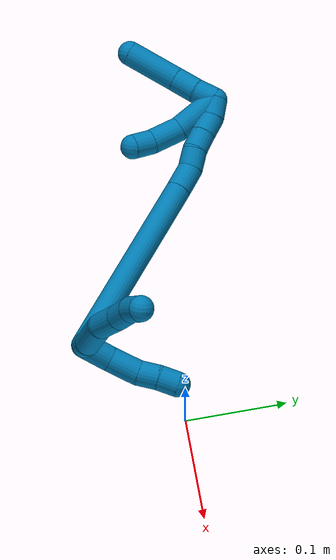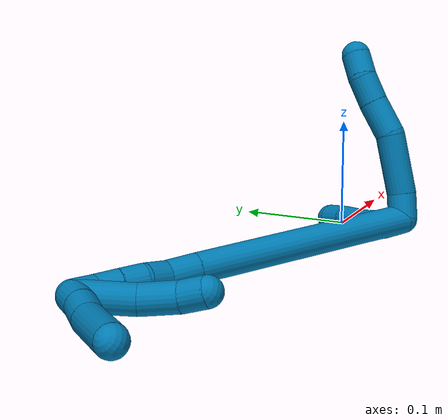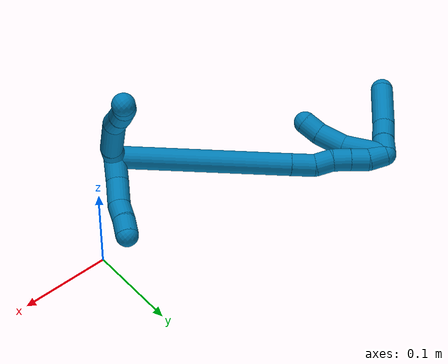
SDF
<sdf version="1.7">
 <world name="default">
  <model name="9">
   <static>0</static>
   <link name="9">
    <collision name="collision-cylinder-e_1_2_8">
     <pose>0.009664 -0.002341 0.00438 0.490951 1.0961 0.303506</pose>
     <geometry><cylinder><radius>0.0125</radius><length>0.021731</length></cylinder></geometry>
     <surface>
      <friction><ode><mu>1.16</mu><mu2>1.16</mu2><slip1>0</slip1><slip2>0</slip2></ode></friction>
      <contact><ode><kp>1e+06</kp><kd>1</kd><max_vel>0</max_vel><min_depth>0.001</min_depth></ode></contact>
     </surface>
    </collision>
    <visual name="visual-cylinder-e_1_2_8">
     <pose>0.009664 -0.002341 0.00438 0.490951 1.0961 0.303506</pose>
     <geometry><cylinder><radius>0.0125</radius><length>0.021731</length></cylinder></geometry>
     <material><ambient>0 0.490196 0.709804 1</ambient></material>
    </visual>
    <collision name="collision-cylinder-e_2_8_9">
     <pose>0.039973 -0.008161 0.024059 0.223553 0.920922 0.111237</pose>
     <geometry><cylinder><radius>0.0125</radius><length>0.05186</length></cylinder></geometry>
     <surface>
      <friction><ode><mu>1.16</mu><mu2>1.16</mu2><slip1>0</slip1><slip2>0</slip2></ode></friction>
      <contact><ode><kp>1e+06</kp><kd>1</kd><max_vel>0</max_vel><min_depth>0.001</min_depth></ode></contact>
     </surface>
    </collision>
    <visual name="visual-cylinder-e_2_8_9">
     <pose>0.039973 -0.008161 0.024059 0.223553 0.920922 0.111237</pose>
     <geometry><cylinder><radius>0.0125</radius><length>0.05186</length></cylinder></geometry>
     <material><ambient>0 0.490196 0.709804 1</ambient></material>
    </visual>
    <collision name="collision-cylinder-e_3_9_10">
     <pose>0.073523 -0.008592 0.047621 -0.353371 0.971987 -0.18808</pose>
     <geometry><cylinder><radius>0.0125</radius><length>0.031249</length></cylinder></geometry>
     <surface>
      <friction><ode><mu>1.16</mu><mu2>1.16</mu2><slip1>0</slip1><slip2>0</slip2></ode></friction>
      <contact><ode><kp>1e+06</kp><kd>1</kd><max_vel>0</max_vel><min_depth>0.001</min_depth></ode></contact>
     </surface>
    </collision>
    <visual name="visual-cylinder-e_3_9_10">
     <pose>0.073523 -0.008592 0.047621 -0.353371 0.971987 -0.18808</pose>
     <geometry><cylinder><radius>0.0125</radius><length>0.031249</length></cylinder></geometry>
     <material><ambient>0 0.490196 0.709804 1</ambient></material>
    </visual>
    <collision name="collision-cylinder-e_4_10_11">
     <pose>0.0964 -0.004248 0.062695 -0.187991 0.963245 -0.098469</pose>
     <geometry><cylinder><radius>0.0125</radius><length>0.02429</length></cylinder></geometry>
     <surface>
      <friction><ode><mu>1.16</mu><mu2>1.16</mu2><slip1>0</slip1><slip2>0</slip2></ode></friction>
      <contact><ode><kp>1e+06</kp><kd>1</kd><max_vel>0</max_vel><min_depth>0.001</min_depth></ode></contact>
     </surface>
    </collision>
    <visual name="visual-cylinder-e_4_10_11">
     <pose>0.0964 -0.004248 0.062695 -0.187991 0.963245 -0.098469</pose>
     <geometry><cylinder><radius>0.0125</radius><length>0.02429</length></cylinder></geometry>
     <material><ambient>0 0.490196 0.709804 1</ambient></material>
    </visual>
    <collision name="collision-cylinder-e_5_11_6">
     <pose>0.116165 -0.002267 0.073043 -0.191557 1.21822 -0.133838</pose>
     <geometry><cylinder><radius>0.0125</radius><length>0.02087</length></cylinder></geometry>
     <surface>
      <friction><ode><mu>1.16</mu><mu2>1.16</mu2><slip1>0</slip1><slip2>0</slip2></ode></friction>
      <contact><ode><kp>1e+06</kp><kd>1</kd><max_vel>0</max_vel><min_depth>0.001</min_depth></ode></contact>
     </surface>
    </collision>
    <visual name="visual-cylinder-e_5_11_6">
     <pose>0.116165 -0.002267 0.073043 -0.191557 1.21822 -0.133838</pose>
     <geometry><cylinder><radius>0.0125</radius><length>0.02087</length></cylinder></geometry>
     <material><ambient>0 0.490196 0.709804 1</ambient></material>
    </visual>
    <collision name="collision-cylinder-e_1_2_12">
     <pose>0.003735 0.012431 -0.00634 -2.04244 0.261505 -0.422958</pose>
     <geometry><cylinder><radius>0.0125</radius><length>0.028891</length></cylinder></geometry>
     <surface>
      <friction><ode><mu>1.16</mu><mu2>1.16</mu2><slip1>0</slip1><slip2>0</slip2></ode></friction>
      <contact><ode><kp>1e+06</kp><kd>1</kd><max_vel>0</max_vel><min_depth>0.001</min_depth></ode></contact>
     </surface>
    </collision>
    <visual name="visual-cylinder-e_1_2_12">
     <pose>0.003735 0.012431 -0.00634 -2.04244 0.261505 -0.422958</pose>
     <geometry><cylinder><radius>0.0125</radius><length>0.028891</length></cylinder></geometry>
     <material><ambient>0 0.490196 0.709804 1</ambient></material>
    </visual>
    <collision name="collision-cylinder-e_2_12_13">
     <pose>0.014746 0.037356 -0.018035 -1.97571 0.491482 -0.726945</pose>
     <geometry><cylinder><radius>0.0125</radius><length>0.030836</length></cylinder></geometry>
     <surface>
      <friction><ode><mu>1.16</mu><mu2>1.16</mu2><slip1>0</slip1><slip2>0</slip2></ode></friction>
      <contact><ode><kp>1e+06</kp><kd>1</kd><max_vel>0</max_vel><min_depth>0.001</min_depth></ode></contact>
     </surface>
    </collision>
    <visual name="visual-cylinder-e_2_12_13">
     <pose>0.014746 0.037356 -0.018035 -1.97571 0.491482 -0.726945</pose>
     <geometry><cylinder><radius>0.0125</radius><length>0.030836</length></cylinder></geometry>
     <material><ambient>0 0.490196 0.709804 1</ambient></material>
    </visual>
    <collision name="collision-cylinder-e_3_13_14">
     <pose>0.027048 0.058541 -0.024531 -1.70131 0.520618 -0.589512</pose>
     <geometry><cylinder><radius>0.0125</radius><length>0.02021</length></cylinder></geometry>
     <surface>
      <friction><ode><mu>1.16</mu><mu2>1.16</mu2><slip1>0</slip1><slip2>0</slip2></ode></friction>
      <contact><ode><kp>1e+06</kp><kd>1</kd><max_vel>0</max_vel><min_depth>0.001</min_depth></ode></contact>
     </surface>
    </collision>
    <visual name="visual-cylinder-e_3_13_14">
     <pose>0.027048 0.058541 -0.024531 -1.70131 0.520618 -0.589512</pose>
     <geometry><cylinder><radius>0.0125</radius><length>0.02021</length></cylinder></geometry>
     <material><ambient>0 0.490196 0.709804 1</ambient></material>
    </visual>
    <collision name="collision-cylinder-e_4_14_5">
     <pose>0.036629 0.075829 -0.028119 -1.84814 0.47125 -0.615721</pose>
     <geometry><cylinder><radius>0.0125</radius><length>0.020064</length></cylinder></geometry>
     <surface>
      <friction><ode><mu>1.16</mu><mu2>1.16</mu2><slip1>0</slip1><slip2>0</slip2></ode></friction>
      <contact><ode><kp>1e+06</kp><kd>1</kd><max_vel>0</max_vel><min_depth>0.001</min_depth></ode></contact>
     </surface>
    </collision>
    <visual name="visual-cylinder-e_4_14_5">
     <pose>0.036629 0.075829 -0.028119 -1.84814 0.47125 -0.615721</pose>
     <geometry><cylinder><radius>0.0125</radius><length>0.020064</length></cylinder></geometry>
     <material><ambient>0 0.490196 0.709804 1</ambient></material>
    </visual>
    <collision name="collision-cylinder-e_1_2_15">
     <pose>-0.036543 0.059765 0.066414 -0.73275 -0.388249 0.150585</pose>
     <geometry><cylinder><radius>0.0125</radius><length>0.193061</length></cylinder></geometry>
     <surface>
      <friction><ode><mu>1.16</mu><mu2>1.16</mu2><slip1>0</slip1><slip2>0</slip2></ode></friction>
      <contact><ode><kp>1e+06</kp><kd>1</kd><max_vel>0</max_vel><min_depth>0.001</min_depth></ode></contact>
     </surface>
    </collision>
    <visual name="visual-cylinder-e_1_2_15">
     <pose>-0.036543 0.059765 0.066414 -0.73275 -0.388249 0.150585</pose>
     <geometry><cylinder><radius>0.0125</radius><length>0.193061</length></cylinder></geometry>
     <material><ambient>0 0.490196 0.709804 1</ambient></material>
    </visual>
    <collision name="collision-cylinder-e_2_15_16">
     <pose>-0.07842 0.127598 0.141922 -0.725682 -0.413456 0.158908</pose>
     <geometry><cylinder><radius>0.0125</radius><length>0.02655</length></cylinder></geometry>
     <surface>
      <friction><ode><mu>1.16</mu><mu2>1.16</mu2><slip1>0</slip1><slip2>0</slip2></ode></friction>
      <contact><ode><kp>1e+06</kp><kd>1</kd><max_vel>0</max_vel><min_depth>0.001</min_depth></ode></contact>
     </surface>
    </collision>
    <visual name="visual-cylinder-e_2_15_16">
     <pose>-0.07842 0.127598 0.141922 -0.725682 -0.413456 0.158908</pose>
     <geometry><cylinder><radius>0.0125</radius><length>0.02655</length></cylinder></geometry>
     <material><ambient>0 0.490196 0.709804 1</ambient></material>
    </visual>
    <collision name="collision-cylinder-e_3_16_17">
     <pose>-0.087622 0.139046 0.159672 -0.372322 -0.394441 0.075233</pose>
     <geometry><cylinder><radius>0.0125</radius><length>0.020132</length></cylinder></geometry>
     <surface>
      <friction><ode><mu>1.16</mu><mu2>1.16</mu2><slip1>0</slip1><slip2>0</slip2></ode></friction>
      <contact><ode><kp>1e+06</kp><kd>1</kd><max_vel>0</max_vel><min_depth>0.001</min_depth></ode></contact>
     </surface>
    </collision>
    <visual name="visual-cylinder-e_3_16_17">
     <pose>-0.087622 0.139046 0.159672 -0.372322 -0.394441 0.075233</pose>
     <geometry><cylinder><radius>0.0125</radius><length>0.020132</length></cylinder></geometry>
     <material><ambient>0 0.490196 0.709804 1</ambient></material>
    </visual>
    <collision name="collision-cylinder-e_4_17_18">
     <pose>-0.095501 0.148019 0.175697 -0.649269 -0.409017 0.139376</pose>
     <geometry><cylinder><radius>0.0125</radius><length>0.020165</length></cylinder></geometry>
     <surface>
      <friction><ode><mu>1.16</mu><mu2>1.16</mu2><slip1>0</slip1><slip2>0</slip2></ode></friction>
      <contact><ode><kp>1e+06</kp><kd>1</kd><max_vel>0</max_vel><min_depth>0.001</min_depth></ode></contact>
     </surface>
    </collision>
    <visual name="visual-cylinder-e_4_17_18">
     <pose>-0.095501 0.148019 0.175697 -0.649269 -0.409017 0.139376</pose>
     <geometry><cylinder><radius>0.0125</radius><length>0.020165</length></cylinder></geometry>
     <material><ambient>0 0.490196 0.709804 1</ambient></material>
    </visual>
    <collision name="collision-cylinder-e_5_18_19">
     <pose>-0.103441 0.159515 0.190172 -0.693094 -0.402278 0.146997</pose>
     <geometry><cylinder><radius>0.0125</radius><length>0.020078</length></cylinder></geometry>
     <surface>
      <friction><ode><mu>1.16</mu><mu2>1.16</mu2><slip1>0</slip1><slip2>0</slip2></ode></friction>
      <contact><ode><kp>1e+06</kp><kd>1</kd><max_vel>0</max_vel><min_depth>0.001</min_depth></ode></contact>
     </surface>
    </collision>
    <visual name="visual-cylinder-e_5_18_19">
     <pose>-0.103441 0.159515 0.190172 -0.693094 -0.402278 0.146997</pose>
     <geometry><cylinder><radius>0.0125</radius><length>0.020078</length></cylinder></geometry>
     <material><ambient>0 0.490196 0.709804 1</ambient></material>
    </visual>
    <collision name="collision-cylinder-e_6_19_1">
     <pose>-0.111961 0.168571 0.205592 -0.362624 -0.476464 0.08898</pose>
     <geometry><cylinder><radius>0.0125</radius><length>0.020013</length></cylinder></geometry>
     <surface>
      <friction><ode><mu>1.16</mu><mu2>1.16</mu2><slip1>0</slip1><slip2>0</slip2></ode></friction>
      <contact><ode><kp>1e+06</kp><kd>1</kd><max_vel>0</max_vel><min_depth>0.001</min_depth></ode></contact>
     </surface>
    </collision>
    <visual name="visual-cylinder-e_6_19_1">
     <pose>-0.111961 0.168571 0.205592 -0.362624 -0.476464 0.08898</pose>
     <geometry><cylinder><radius>0.0125</radius><length>0.020013</length></cylinder></geometry>
     <material><ambient>0 0.490196 0.709804 1</ambient></material>
    </visual>
    <collision name="collision-cylinder-e_1_1_20">
     <pose>-0.11667 0.153295 0.199053 2.24911 -0.005042 -0.010539</pose>
     <geometry><cylinder><radius>0.0125</radius><length>0.047342</length></cylinder></geometry>
     <surface>
      <friction><ode><mu>1.16</mu><mu2>1.16</mu2><slip1>0</slip1><slip2>0</slip2></ode></friction>
      <contact><ode><kp>1e+06</kp><kd>1</kd><max_vel>0</max_vel><min_depth>0.001</min_depth></ode></contact>
     </surface>
    </collision>
    <visual name="visual-cylinder-e_1_1_20">
     <pose>-0.11667 0.153295 0.199053 2.24911 -0.005042 -0.010539</pose>
     <geometry><cylinder><radius>0.0125</radius><length>0.047342</length></cylinder></geometry>
     <material><ambient>0 0.490196 0.709804 1</ambient></material>
    </visual>
    <collision name="collision-cylinder-e_2_20_21">
     <pose>-0.116749 0.120351 0.177703 1.99176 0.002525 0.003897</pose>
     <geometry><cylinder><radius>0.0125</radius><length>0.031803</length></cylinder></geometry>
     <surface>
      <friction><ode><mu>1.16</mu><mu2>1.16</mu2><slip1>0</slip1><slip2>0</slip2></ode></friction>
      <contact><ode><kp>1e+06</kp><kd>1</kd><max_vel>0</max_vel><min_depth>0.001</min_depth></ode></contact>
     </surface>
    </collision>
    <visual name="visual-cylinder-e_2_20_21">
     <pose>-0.116749 0.120351 0.177703 1.99176 0.002525 0.003897</pose>
     <geometry><cylinder><radius>0.0125</radius><length>0.031803</length></cylinder></geometry>
     <material><ambient>0 0.490196 0.709804 1</ambient></material>
    </visual>
    <collision name="collision-cylinder-e_3_21_4">
     <pose>-0.116254 0.095661 0.16898 1.78602 0.043593 0.054148</pose>
     <geometry><cylinder><radius>0.0125</radius><length>0.020855</length></cylinder></geometry>
     <surface>
      <friction><ode><mu>1.16</mu><mu2>1.16</mu2><slip1>0</slip1><slip2>0</slip2></ode></friction>
      <contact><ode><kp>1e+06</kp><kd>1</kd><max_vel>0</max_vel><min_depth>0.001</min_depth></ode></contact>
     </surface>
    </collision>
    <visual name="visual-cylinder-e_3_21_4">
     <pose>-0.116254 0.095661 0.16898 1.78602 0.043593 0.054148</pose>
     <geometry><cylinder><radius>0.0125</radius><length>0.020855</length></cylinder></geometry>
     <material><ambient>0 0.490196 0.709804 1</ambient></material>
    </visual>
    <collision name="collision-cylinder-e_1_1_22">
     <pose>-0.12338 0.164142 0.216946 1.18959 -0.696322 -0.481556</pose>
     <geometry><cylinder><radius>0.0125</radius><length>0.021297</length></cylinder></geometry>
     <surface>
      <friction><ode><mu>1.16</mu><mu2>1.16</mu2><slip1>0</slip1><slip2>0</slip2></ode></friction>
      <contact><ode><kp>1e+06</kp><kd>1</kd><max_vel>0</max_vel><min_depth>0.001</min_depth></ode></contact>
     </surface>
    </collision>
    <visual name="visual-cylinder-e_1_1_22">
     <pose>-0.12338 0.164142 0.216946 1.18959 -0.696322 -0.481556</pose>
     <geometry><cylinder><radius>0.0125</radius><length>0.021297</length></cylinder></geometry>
     <material><ambient>0 0.490196 0.709804 1</ambient></material>
    </visual>
    <collision name="collision-cylinder-e_2_22_23">
     <pose>-0.138949 0.148788 0.223999 1.09404 -0.784943 -0.493907</pose>
     <geometry><cylinder><radius>0.0125</radius><length>0.024727</length></cylinder></geometry>
     <surface>
      <friction><ode><mu>1.16</mu><mu2>1.16</mu2><slip1>0</slip1><slip2>0</slip2></ode></friction>
      <contact><ode><kp>1e+06</kp><kd>1</kd><max_vel>0</max_vel><min_depth>0.001</min_depth></ode></contact>
     </surface>
    </collision>
    <visual name="visual-cylinder-e_2_22_23">
     <pose>-0.138949 0.148788 0.223999 1.09404 -0.784943 -0.493907</pose>
     <geometry><cylinder><radius>0.0125</radius><length>0.024727</length></cylinder></geometry>
     <material><ambient>0 0.490196 0.709804 1</ambient></material>
    </visual>
    <collision name="collision-cylinder-e_3_23_3">
     <pose>-0.163533 0.121552 0.23793 1.09956 -0.627543 -0.392579</pose>
     <geometry><cylinder><radius>0.0125</radius><length>0.053976</length></cylinder></geometry>
     <surface>
      <friction><ode><mu>1.16</mu><mu2>1.16</mu2><slip1>0</slip1><slip2>0</slip2></ode></friction>
      <contact><ode><kp>1e+06</kp><kd>1</kd><max_vel>0</max_vel><min_depth>0.001</min_depth></ode></contact>
     </surface>
    </collision>
    <visual name="visual-cylinder-e_3_23_3">
     <pose>-0.163533 0.121552 0.23793 1.09956 -0.627543 -0.392579</pose>
     <geometry><cylinder><radius>0.0125</radius><length>0.053976</length></cylinder></geometry>
     <material><ambient>0 0.490196 0.709804 1</ambient></material>
    </visual>
    <collision name="collision-sphere-3">
     <pose>-0.179379 0.102087 0.247848 0 -0 0</pose>
     <geometry><sphere><radius>0.0125</radius></sphere></geometry>
     <surface>
      <friction><ode><mu>1.16</mu><mu2>1.16</mu2><slip1>0</slip1><slip2>0</slip2></ode></friction>
      <contact><ode><kp>1e+06</kp><kd>1</kd><max_vel>0</max_vel><min_depth>0.001</min_depth></ode></contact>
     </surface>
    </collision>
    <visual name="visual-sphere-3">
     <pose>-0.179379 0.102087 0.247848 0 -0 0</pose>
     <geometry><sphere><radius>0.0125</radius></sphere></geometry>
     <material><ambient>0 0.490196 0.709804 1</ambient></material>
    </visual>
    <collision name="collision-sphere-23">
     <pose>-0.147687 0.141017 0.228012 0 -0 0</pose>
     <geometry><sphere><radius>0.0125</radius></sphere></geometry>
     <surface>
      <friction><ode><mu>1.16</mu><mu2>1.16</mu2><slip1>0</slip1><slip2>0</slip2></ode></friction>
      <contact><ode><kp>1e+06</kp><kd>1</kd><max_vel>0</max_vel><min_depth>0.001</min_depth></ode></contact>
     </surface>
    </collision>
    <visual name="visual-sphere-23">
     <pose>-0.147687 0.141017 0.228012 0 -0 0</pose>
     <geometry><sphere><radius>0.0125</radius></sphere></geometry>
     <material><ambient>0 0.490196 0.709804 1</ambient></material>
    </visual>
    <collision name="collision-sphere-22">
     <pose>-0.13021 0.156559 0.219985 0 -0 0</pose>
     <geometry><sphere><radius>0.0125</radius></sphere></geometry>
     <surface>
      <friction><ode><mu>1.16</mu><mu2>1.16</mu2><slip1>0</slip1><slip2>0</slip2></ode></friction>
      <contact><ode><kp>1e+06</kp><kd>1</kd><max_vel>0</max_vel><min_depth>0.001</min_depth></ode></contact>
     </surface>
    </collision>
    <visual name="visual-sphere-22">
     <pose>-0.13021 0.156559 0.219985 0 -0 0</pose>
     <geometry><sphere><radius>0.0125</radius></sphere></geometry>
     <material><ambient>0 0.490196 0.709804 1</ambient></material>
    </visual>
    <collision name="collision-sphere-4">
     <pose>-0.1158 0.085483 0.166755 0 -0 0</pose>
     <geometry><sphere><radius>0.0125</radius></sphere></geometry>
     <surface>
      <friction><ode><mu>1.16</mu><mu2>1.16</mu2><slip1>0</slip1><slip2>0</slip2></ode></friction>
      <contact><ode><kp>1e+06</kp><kd>1</kd><max_vel>0</max_vel><min_depth>0.001</min_depth></ode></contact>
     </surface>
    </collision>
    <visual name="visual-sphere-4">
     <pose>-0.1158 0.085483 0.166755 0 -0 0</pose>
     <geometry><sphere><radius>0.0125</radius></sphere></geometry>
     <material><ambient>0 0.490196 0.709804 1</ambient></material>
    </visual>
    <collision name="collision-sphere-21">
     <pose>-0.116709 0.105838 0.171205 0 -0 0</pose>
     <geometry><sphere><radius>0.0125</radius></sphere></geometry>
     <surface>
      <friction><ode><mu>1.16</mu><mu2>1.16</mu2><slip1>0</slip1><slip2>0</slip2></ode></friction>
      <contact><ode><kp>1e+06</kp><kd>1</kd><max_vel>0</max_vel><min_depth>0.001</min_depth></ode></contact>
     </surface>
    </collision>
    <visual name="visual-sphere-21">
     <pose>-0.116709 0.105838 0.171205 0 -0 0</pose>
     <geometry><sphere><radius>0.0125</radius></sphere></geometry>
     <material><ambient>0 0.490196 0.709804 1</ambient></material>
    </visual>
    <collision name="collision-sphere-20">
     <pose>-0.116789 0.134864 0.184201 0 -0 0</pose>
     <geometry><sphere><radius>0.0125</radius></sphere></geometry>
     <surface>
      <friction><ode><mu>1.16</mu><mu2>1.16</mu2><slip1>0</slip1><slip2>0</slip2></ode></friction>
      <contact><ode><kp>1e+06</kp><kd>1</kd><max_vel>0</max_vel><min_depth>0.001</min_depth></ode></contact>
     </surface>
    </collision>
    <visual name="visual-sphere-20">
     <pose>-0.116789 0.134864 0.184201 0 -0 0</pose>
     <geometry><sphere><radius>0.0125</radius></sphere></geometry>
     <material><ambient>0 0.490196 0.709804 1</ambient></material>
    </visual>
    <collision name="collision-sphere-6">
     <pose>0.125958 -0.001581 0.076581 0 -0 0</pose>
     <geometry><sphere><radius>0.0125</radius></sphere></geometry>
     <surface>
      <friction><ode><mu>1.16</mu><mu2>1.16</mu2><slip1>0</slip1><slip2>0</slip2></ode></friction>
      <contact><ode><kp>1e+06</kp><kd>1</kd><max_vel>0</max_vel><min_depth>0.001</min_depth></ode></contact>
     </surface>
    </collision>
    <visual name="visual-sphere-6">
     <pose>0.125958 -0.001581 0.076581 0 -0 0</pose>
     <geometry><sphere><radius>0.0125</radius></sphere></geometry>
     <material><ambient>0 0.490196 0.709804 1</ambient></material>
    </visual>
    <collision name="collision-sphere-11">
     <pose>0.106372 -0.002953 0.069505 0 -0 0</pose>
     <geometry><sphere><radius>0.0125</radius></sphere></geometry>
     <surface>
      <friction><ode><mu>1.16</mu><mu2>1.16</mu2><slip1>0</slip1><slip2>0</slip2></ode></friction>
      <contact><ode><kp>1e+06</kp><kd>1</kd><max_vel>0</max_vel><min_depth>0.001</min_depth></ode></contact>
     </surface>
    </collision>
    <visual name="visual-sphere-11">
     <pose>0.106372 -0.002953 0.069505 0 -0 0</pose>
     <geometry><sphere><radius>0.0125</radius></sphere></geometry>
     <material><ambient>0 0.490196 0.709804 1</ambient></material>
    </visual>
    <collision name="collision-sphere-10">
     <pose>0.086429 -0.005544 0.055884 0 -0 0</pose>
     <geometry><sphere><radius>0.0125</radius></sphere></geometry>
     <surface>
      <friction><ode><mu>1.16</mu><mu2>1.16</mu2><slip1>0</slip1><slip2>0</slip2></ode></friction>
      <contact><ode><kp>1e+06</kp><kd>1</kd><max_vel>0</max_vel><min_depth>0.001</min_depth></ode></contact>
     </surface>
    </collision>
    <visual name="visual-sphere-10">
     <pose>0.086429 -0.005544 0.055884 0 -0 0</pose>
     <geometry><sphere><radius>0.0125</radius></sphere></geometry>
     <material><ambient>0 0.490196 0.709804 1</ambient></material>
    </visual>
    <collision name="collision-sphere-9">
     <pose>0.060617 -0.01164 0.039358 0 -0 0</pose>
     <geometry><sphere><radius>0.0125</radius></sphere></geometry>
     <surface>
      <friction><ode><mu>1.16</mu><mu2>1.16</mu2><slip1>0</slip1><slip2>0</slip2></ode></friction>
      <contact><ode><kp>1e+06</kp><kd>1</kd><max_vel>0</max_vel><min_depth>0.001</min_depth></ode></contact>
     </surface>
    </collision>
    <visual name="visual-sphere-9">
     <pose>0.060617 -0.01164 0.039358 0 -0 0</pose>
     <geometry><sphere><radius>0.0125</radius></sphere></geometry>
     <material><ambient>0 0.490196 0.709804 1</ambient></material>
    </visual>
    <collision name="collision-sphere-2">
     <geometry><sphere><radius>0.0125</radius></sphere></geometry>
     <surface>
      <friction><ode><mu>1.16</mu><mu2>1.16</mu2><slip1>0</slip1><slip2>0</slip2></ode></friction>
      <contact><ode><kp>1e+06</kp><kd>1</kd><max_vel>0</max_vel><min_depth>0.001</min_depth></ode></contact>
     </surface>
    </collision>
    <visual name="visual-sphere-2">
     <geometry><sphere><radius>0.0125</radius></sphere></geometry>
     <material><ambient>0 0.490196 0.709804 1</ambient></material>
    </visual>
    <collision name="collision-sphere-19">
     <pose>-0.107371 0.165417 0.197278 0 -0 0</pose>
     <geometry><sphere><radius>0.0125</radius></sphere></geometry>
     <surface>
      <friction><ode><mu>1.16</mu><mu2>1.16</mu2><slip1>0</slip1><slip2>0</slip2></ode></friction>
      <contact><ode><kp>1e+06</kp><kd>1</kd><max_vel>0</max_vel><min_depth>0.001</min_depth></ode></contact>
     </surface>
    </collision>
    <visual name="visual-sphere-19">
     <pose>-0.107371 0.165417 0.197278 0 -0 0</pose>
     <geometry><sphere><radius>0.0125</radius></sphere></geometry>
     <material><ambient>0 0.490196 0.709804 1</ambient></material>
    </visual>
    <collision name="collision-sphere-8">
     <pose>0.019328 -0.004683 0.008759 0 -0 0</pose>
     <geometry><sphere><radius>0.0125</radius></sphere></geometry>
     <surface>
      <friction><ode><mu>1.16</mu><mu2>1.16</mu2><slip1>0</slip1><slip2>0</slip2></ode></friction>
      <contact><ode><kp>1e+06</kp><kd>1</kd><max_vel>0</max_vel><min_depth>0.001</min_depth></ode></contact>
     </surface>
    </collision>
    <visual name="visual-sphere-8">
     <pose>0.019328 -0.004683 0.008759 0 -0 0</pose>
     <geometry><sphere><radius>0.0125</radius></sphere></geometry>
     <material><ambient>0 0.490196 0.709804 1</ambient></material>
    </visual>
    <collision name="collision-sphere-12">
     <pose>0.007469 0.024862 -0.01268 0 -0 0</pose>
     <geometry><sphere><radius>0.0125</radius></sphere></geometry>
     <surface>
      <friction><ode><mu>1.16</mu><mu2>1.16</mu2><slip1>0</slip1><slip2>0</slip2></ode></friction>
      <contact><ode><kp>1e+06</kp><kd>1</kd><max_vel>0</max_vel><min_depth>0.001</min_depth></ode></contact>
     </surface>
    </collision>
    <visual name="visual-sphere-12">
     <pose>0.007469 0.024862 -0.01268 0 -0 0</pose>
     <geometry><sphere><radius>0.0125</radius></sphere></geometry>
     <material><ambient>0 0.490196 0.709804 1</ambient></material>
    </visual>
    <collision name="collision-sphere-13">
     <pose>0.022022 0.049849 -0.02339 0 -0 0</pose>
     <geometry><sphere><radius>0.0125</radius></sphere></geometry>
     <surface>
      <friction><ode><mu>1.16</mu><mu2>1.16</mu2><slip1>0</slip1><slip2>0</slip2></ode></friction>
      <contact><ode><kp>1e+06</kp><kd>1</kd><max_vel>0</max_vel><min_depth>0.001</min_depth></ode></contact>
     </surface>
    </collision>
    <visual name="visual-sphere-13">
     <pose>0.022022 0.049849 -0.02339 0 -0 0</pose>
     <geometry><sphere><radius>0.0125</radius></sphere></geometry>
     <material><ambient>0 0.490196 0.709804 1</ambient></material>
    </visual>
    <collision name="collision-sphere-14">
     <pose>0.032074 0.067232 -0.025672 0 -0 0</pose>
     <geometry><sphere><radius>0.0125</radius></sphere></geometry>
     <surface>
      <friction><ode><mu>1.16</mu><mu2>1.16</mu2><slip1>0</slip1><slip2>0</slip2></ode></friction>
      <contact><ode><kp>1e+06</kp><kd>1</kd><max_vel>0</max_vel><min_depth>0.001</min_depth></ode></contact>
     </surface>
    </collision>
    <visual name="visual-sphere-14">
     <pose>0.032074 0.067232 -0.025672 0 -0 0</pose>
     <geometry><sphere><radius>0.0125</radius></sphere></geometry>
     <material><ambient>0 0.490196 0.709804 1</ambient></material>
    </visual>
    <collision name="collision-sphere-5">
     <pose>0.041183 0.084426 -0.030566 0 -0 0</pose>
     <geometry><sphere><radius>0.0125</radius></sphere></geometry>
     <surface>
      <friction><ode><mu>1.16</mu><mu2>1.16</mu2><slip1>0</slip1><slip2>0</slip2></ode></friction>
      <contact><ode><kp>1e+06</kp><kd>1</kd><max_vel>0</max_vel><min_depth>0.001</min_depth></ode></contact>
     </surface>
    </collision>
    <visual name="visual-sphere-5">
     <pose>0.041183 0.084426 -0.030566 0 -0 0</pose>
     <geometry><sphere><radius>0.0125</radius></sphere></geometry>
     <material><ambient>0 0.490196 0.709804 1</ambient></material>
    </visual>
    <collision name="collision-sphere-15">
     <pose>-0.073087 0.11953 0.132829 0 -0 0</pose>
     <geometry><sphere><radius>0.0125</radius></sphere></geometry>
     <surface>
      <friction><ode><mu>1.16</mu><mu2>1.16</mu2><slip1>0</slip1><slip2>0</slip2></ode></friction>
      <contact><ode><kp>1e+06</kp><kd>1</kd><max_vel>0</max_vel><min_depth>0.001</min_depth></ode></contact>
     </surface>
    </collision>
    <visual name="visual-sphere-15">
     <pose>-0.073087 0.11953 0.132829 0 -0 0</pose>
     <geometry><sphere><radius>0.0125</radius></sphere></geometry>
     <material><ambient>0 0.490196 0.709804 1</ambient></material>
    </visual>
    <collision name="collision-sphere-16">
     <pose>-0.083754 0.135665 0.151016 0 -0 0</pose>
     <geometry><sphere><radius>0.0125</radius></sphere></geometry>
     <surface>
      <friction><ode><mu>1.16</mu><mu2>1.16</mu2><slip1>0</slip1><slip2>0</slip2></ode></friction>
      <contact><ode><kp>1e+06</kp><kd>1</kd><max_vel>0</max_vel><min_depth>0.001</min_depth></ode></contact>
     </surface>
    </collision>
    <visual name="visual-sphere-16">
     <pose>-0.083754 0.135665 0.151016 0 -0 0</pose>
     <geometry><sphere><radius>0.0125</radius></sphere></geometry>
     <material><ambient>0 0.490196 0.709804 1</ambient></material>
    </visual>
    <collision name="collision-sphere-17">
     <pose>-0.091491 0.142426 0.168329 0 -0 0</pose>
     <geometry><sphere><radius>0.0125</radius></sphere></geometry>
     <surface>
      <friction><ode><mu>1.16</mu><mu2>1.16</mu2><slip1>0</slip1><slip2>0</slip2></ode></friction>
      <contact><ode><kp>1e+06</kp><kd>1</kd><max_vel>0</max_vel><min_depth>0.001</min_depth></ode></contact>
     </surface>
    </collision>
    <visual name="visual-sphere-17">
     <pose>-0.091491 0.142426 0.168329 0 -0 0</pose>
     <geometry><sphere><radius>0.0125</radius></sphere></geometry>
     <material><ambient>0 0.490196 0.709804 1</ambient></material>
    </visual>
    <collision name="collision-sphere-18">
     <pose>-0.09951 0.153613 0.183066 0 -0 0</pose>
     <geometry><sphere><radius>0.0125</radius></sphere></geometry>
     <surface>
      <friction><ode><mu>1.16</mu><mu2>1.16</mu2><slip1>0</slip1><slip2>0</slip2></ode></friction>
      <contact><ode><kp>1e+06</kp><kd>1</kd><max_vel>0</max_vel><min_depth>0.001</min_depth></ode></contact>
     </surface>
    </collision>
    <visual name="visual-sphere-18">
     <pose>-0.09951 0.153613 0.183066 0 -0 0</pose>
     <geometry><sphere><radius>0.0125</radius></sphere></geometry>
     <material><ambient>0 0.490196 0.709804 1</ambient></material>
    </visual>
    <collision name="collision-sphere-1">
     <pose>-0.11655 0.171726 0.213906 0 -0 0</pose>
     <geometry><sphere><radius>0.0125</radius></sphere></geometry>
     <surface>
      <friction><ode><mu>1.16</mu><mu2>1.16</mu2><slip1>0</slip1><slip2>0</slip2></ode></friction>
      <contact><ode><kp>1e+06</kp><kd>1</kd><max_vel>0</max_vel><min_depth>0.001</min_depth></ode></contact>
     </surface>
    </collision>
    <visual name="visual-sphere-1">
     <pose>-0.11655 0.171726 0.213906 0 -0 0</pose>
     <geometry><sphere><radius>0.0125</radius></sphere></geometry>
     <material><ambient>0 0.490196 0.709804 1</ambient></material>
    </visual>
    <inertial>
     <pose>-0.04334 0.076566 0.102614 0 -0 0</pose>
     <mass>0.75</mass>
     <inertia>
      <ixx>0.000687</ixx>
      <ixy>0</ixy>
      <ixz>0</ixz>
      <iyy>0.000584</iyy>
      <iyz>0</iyz>
      <izz>-0.000119</izz>
     </inertia>
    </inertial>
   </link>
   <pose>-0.082019 -0.084339 0.034652 -0.55638 -0.782276 0.428297</pose>
  </model>
 </world>
</sdf>
